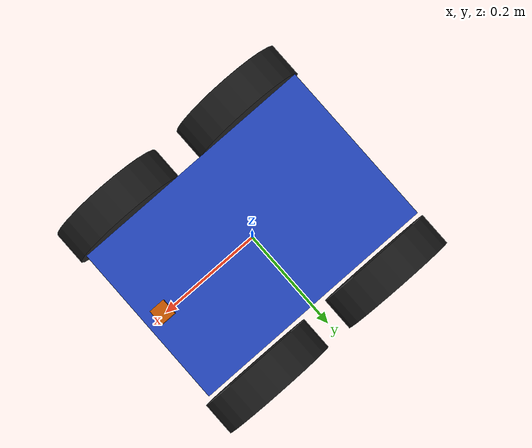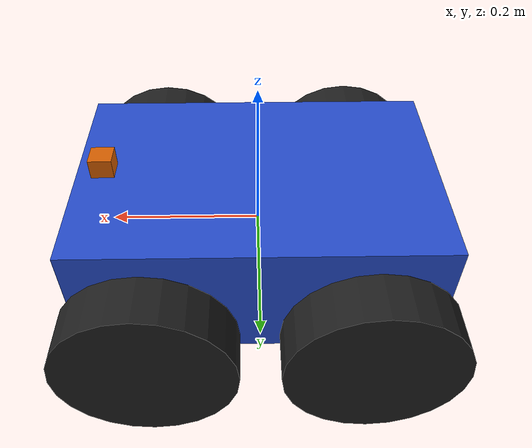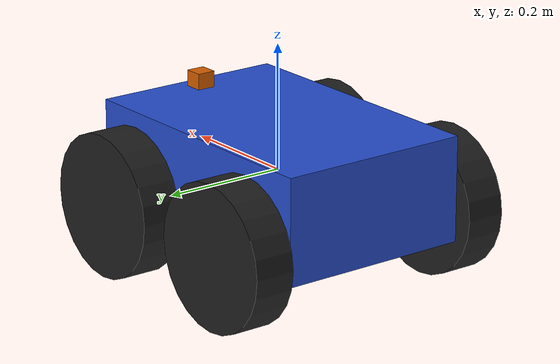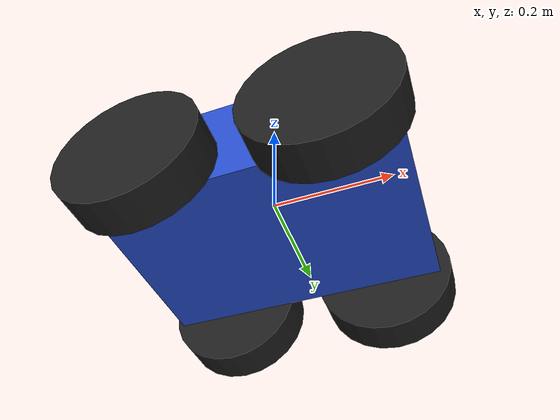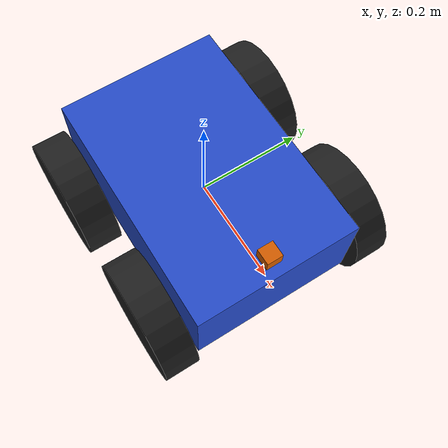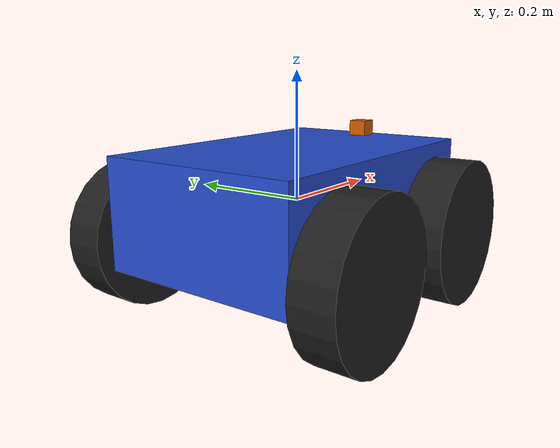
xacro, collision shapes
<?xml version="1.0"?>
<robot name="shoddy_final" xmlns:xacro="http://www.ros.org/wiki/xacro">

    <!-- ПОДКЛЮЧАЕМ "ЧЕРТЕЖИ" (МАКРОСЫ) -->
    <xacro:include filename="$(find my_robot_navigation)/description/urdf/materials.urdf.xacro"/>
    <xacro:include filename="$(find my_robot_navigation)/description/urdf/wheel_macro.urdf.xacro"/>
    <!-- === ИТЕРАЦИЯ 2: Подключаем чертеж для лидара === -->
    <xacro:include filename="$(find my_robot_navigation)/description/urdf/lidar_macro.urdf.xacro"/>

    <!-- ОПРЕДЕЛЯЕМ КОНСТАНТЫ -->
    <xacro:property name="SHAFT_FRONT_X" value="0.14"/>
    <xacro:property name="SHAFT_REAR_X" value="-0.14"/>
    <xacro:property name="SHAFT_Z" value="-0.05"/>
    <xacro:property name="WHEEL_Y" value="0.2"/>

    <!-- ===                        ШАССИ                              === -->
    <link name="base_link">
        <visual>
            <geometry><box size="0.47 0.315 0.168"/></geometry>
            <material name="Blue"/>
        </visual>
        <collision>
            <geometry><box size="0.47 0.315 0.168"/></geometry>
        </collision>
        <inertial>
            <mass value="30.0"/>
            <inertia ixx="1.0" ixy="0" ixz="0" iyy="1.0" iyz="0" izz="1.0"/>
        </inertial>
    </link>

    <!-- ===                        КОЛЕСА                             === -->
    <xacro:wheel_macro side="left" part="front" xyz="${SHAFT_FRONT_X} ${WHEEL_Y} ${SHAFT_Z}" parent="base_link"/>
    <xacro:wheel_macro side="left" part="rear" xyz="${SHAFT_REAR_X} ${WHEEL_Y} ${SHAFT_Z}" parent="base_link"/>
    <xacro:wheel_macro side="right" part="front" xyz="${SHAFT_FRONT_X} -${WHEEL_Y} ${SHAFT_Z}" parent="base_link"/>
    <xacro:wheel_macro side="right" part="rear" xyz="${SHAFT_REAR_X} -${WHEEL_Y} ${SHAFT_Z}" parent="base_link"/>

    <!-- ===  ИТЕРАЦИЯ 2: Создаем лидар, используя его "чертеж" (макрос) === -->
    <xacro:lidar_macro name="sensor_laser_link" parent="base_link"/>

    <!-- ===      ПЛАГИН GAZEBO (ДЛЯ ПУБЛИКАЦИИ /JOINT_STATES)        === -->
    <gazebo>
        <plugin name="joint_state_publisher" filename="libgazebo_ros_joint_state_publisher.so">
            <jointName>
                wheel_left_front_to_base_joint,
                wheel_left_rear_to_base_joint,
                wheel_right_front_to_base_joint,
                wheel_right_rear_to_base_joint
                <!-- ВАЖНО: сустав лидара 'sensor_laser_joint' является 'fixed',
                     поэтому его не нужно добавлять в этот плагин. Плагин
                     публикует только ДВИЖУЩИЕСЯ суставы. -->
            </jointName>
            <updateRate>30.0</updateRate>
        </plugin>
    </gazebo>

</robot>

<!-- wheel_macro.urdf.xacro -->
<robot name="shoddy" xmlns:xacro="http://wiki.ros.org/xacro">
    <xacro:macro name="wheel_macro" params="side part xyz parent">
        <!-- Properties ==================================================== -->
        <xacro:property name="radius" value="0.115"/>
        <xacro:property name="length" value="0.065"/>
        <xacro:property name="mass" value="0.5"/>

        <xacro:property name="Cr" value="${0.001/0.033}"/>
        <xacro:property name="Cl" value="${0.001/0.018}"/>
        <!-- ==================================================== Properties -->

        <!-- Link ========================================================== -->
        <link name="wheel_${side}_${part}_link">
            <visual>
                <origin xyz="0.0 0.0 0.0" rpy="${pi/2*0.0} 0.0 0.0"/>
                <geometry>
                    <mesh filename="package://my_robot_navigation/description/meshes/wheels/${side}_tire.stl"
                          scale="${Cr*radius} ${Cl*length} ${Cr*radius}"/>
                </geometry>
                <material name="Black"/>
            </visual>

            <collision>
                <origin xyz="0.0 0.0 0.0" rpy="${pi/2} 0.0 0.0"/>
                <geometry>
                    <cylinder radius="${radius}" length="${length}"/>
                </geometry>
            </collision>

            <inertial>
                <origin xyz="0.0 0.0 0.0" rpy="${pi/2} 0.0 0.0"/>
                <mass value="${mass}"/>
                <inertia ixx="1.0" ixy="0.0" ixz="0.0" iyy="1.0" iyz="0.0" izz="1.0"/>
            </inertial>
        </link>

        <joint name="wheel_${side}_${part}_to_base_joint" type="continuous">
            <axis xyz="0.0 1.0 0.0"/>
            <origin xyz="${xyz}" rpy="0.0 0.0 0.0"/>
            <parent link="${parent}"/>
            <child link="wheel_${side}_${part}_link"/>
        </joint>

        <transmission name="wheel_${side}_${part}_trans">
            <type>transmission_interface/SimpleTransmission</type>

            <actuator name="wheel_${side}_${part}_motor">
                <mechanicalReduction>1</mechanicalReduction>
            </actuator>

            <joint name="wheel_${side}_${part}_to_base_joint">
                <hardwareInterface>VelocityJointInterface</hardwareInterface>''
            </joint>
        </transmission>

        <gazebo reference="wheel_${side}_${part}_link">
            <mu1 value="1.0"/>
            <mu2 value="1.0"/>
            <kp value="100000.0"/>
            <kd value="1.0"/>
            <material>Gazebo/FlatBlack</material>
        </gazebo>
        <!-- ========================================================== Link -->
    </xacro:macro>
</robot>

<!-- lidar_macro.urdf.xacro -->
<robot name="shoddy" xmlns:xacro="http://wiki.ros.org/xacro">
    <xacro:macro name="lidar_macro" params="name parent">
        <!-- Properties -->
        <xacro:property name="size_x" value="0.03"/>
        <xacro:property name="size_y" value="0.03"/>
        <xacro:property name="size_z" value="0.04"/>

        <xacro:property name="origin_x" value="0.20"/>
        <xacro:property name="origin_y" value="0.0"/>
        <xacro:property name="origin_z" value="0.09"/>

        <!-- Link -->
        <link name="${name}">
            <visual>
                <origin xyz="0.0 0.0 0.0" rpy="0.0 0.0 0.0"/>
                <geometry>
                    <mesh filename="package://my_robot_navigation/description/meshes/lidar/hokuyo.dae"/>
                </geometry>
            </visual>

            <collision>
                <origin xyz="0.0 0.0 0.0" rpy="0.0 0.0 0.0"/>
                <geometry>
                    <box size="${size_x} ${size_y} ${size_z}"/>
                </geometry>
            </collision>

            <inertial>
                <origin xyz="0.0 0.0 0.0" rpy="0.0 0.0 0.0"/>
                <mass value="0.0"/>
                <inertia ixx="0.0" ixy="0.0" ixz="0.0" iyy="0.0" iyz="0.0" izz="0.0"/>
            </inertial>
        </link>

        <joint name="sensor_laser_joint" type="fixed">
            <origin xyz="${origin_x} ${origin_y} ${origin_z}" rpy="0.0 0.0 0.0"/>
            <parent link="${parent}"/>
            <child link="${name}"/>
        </joint>

    </xacro:macro>
</robot>
